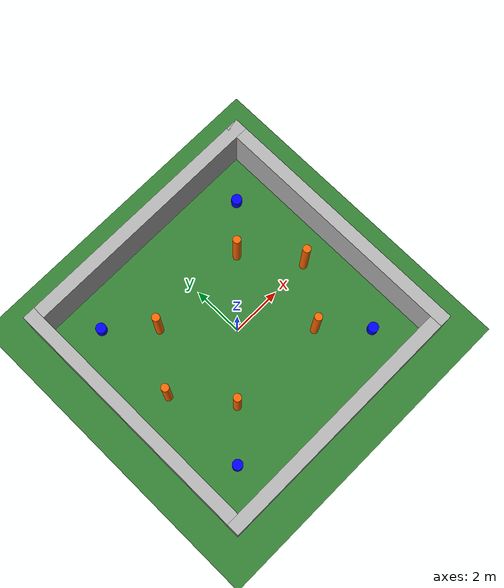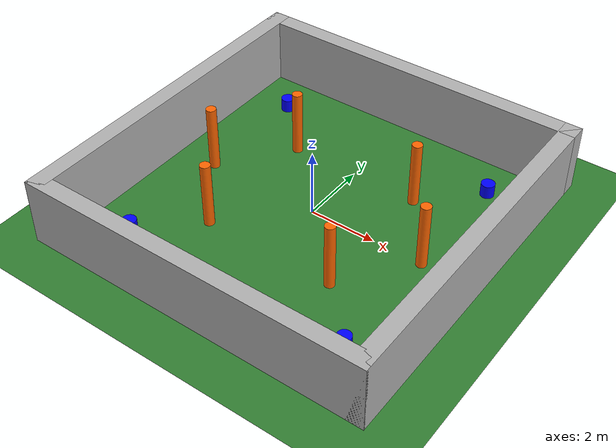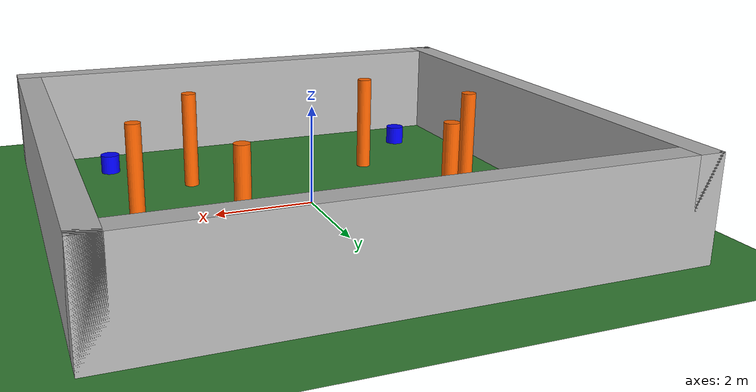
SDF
<?xml version="1.0" ?>
<sdf version="1.8">
    <world name="pioneer_world">
        <physics name="1ms" type="ignored">
            <max_step_size>0.001</max_step_size>
            <real_time_factor>1.0</real_time_factor>
        </physics>
        <plugin filename="libgz-sim-physics-system" name="gz::sim::systems::Physics"/>
        <plugin filename="libgz-sim-user-commands-system" name="gz::sim::systems::UserCommands"/>
        <plugin filename="libgz-sim-scene-broadcaster-system" name="gz::sim::systems::SceneBroadcaster"/>
        <plugin filename="libgz-sim-imu-system" name="gz::sim::systems::Imu"/>
        <plugin filename="libgz-sim-sensors-system.so" name="gz::sim::systems::Sensors"/>
        <plugin filename="libgz-sim-contact-system" name="gz::sim::systems::Contact"/>

        <light type="directional" name="sun">
            <cast_shadows>true</cast_shadows>
            <pose>0 0 10 0 0 0</pose>
            <diffuse>0.8 0.8 0.8 1</diffuse>
            <specular>0.2 0.2 0.2 1</specular>
            <attenuation>
                <range>1000</range>
                <constant>0.9</constant>
                <linear>0.01</linear>
                <quadratic>0.001</quadratic>
            </attenuation>
            <direction>-0.5 0.1 -0.9</direction>
        </light>

        <model name="ground_plane">
            <static>true</static>
            <link name="link">
                <collision name="collision">
                    <geometry><plane><normal>0 0 1</normal></plane></geometry>
                </collision>
                <visual name="visual">
                    <geometry>
                        <plane><normal>0 0 1</normal><size>100 100</size></plane>
                    </geometry>
                    <material>
                        <ambient>0.2 0.5 0.2 1</ambient>
                        <diffuse>0.2 0.5 0.2 1</diffuse>
                        <specular>0.1 0.3 0.1 1</specular>
                    </material>
                </visual>
            </link>
        </model>

        <!-- North wall -->
        <model name="wall_n">
            <static>true</static>
            <pose>0 5 1.0 0 0 0</pose>
            <link name="link">
                <visual name="visual">
                    <geometry><box><size>10.5 0.5 2.0</size></box></geometry>
                    <material><ambient>0.7 0.7 0.7 1</ambient><diffuse>0.7 0.7 0.7 1</diffuse></material>
                </visual>
                <collision name="collision">
                    <geometry><box><size>10.5 0.5 2.0</size></box></geometry>
                </collision>
            </link>
        </model>

        <!-- South wall -->
        <model name="wall_s">
            <static>true</static>
            <pose>0 -5 1.0 0 0 0</pose>
            <link name="link">
                <visual name="visual">
                    <geometry><box><size>10.5 0.5 2.0</size></box></geometry>
                    <material><ambient>0.7 0.7 0.7 1</ambient><diffuse>0.7 0.7 0.7 1</diffuse></material>
                </visual>
                <collision name="collision">
                    <geometry><box><size>10.5 0.5 2.0</size></box></geometry>
                </collision>
            </link>
        </model>

        <!-- East wall -->
        <model name="wall_e">
            <static>true</static>
            <pose>5 0 1.0 0 0 0</pose>
            <link name="link">
                <visual name="visual">
                    <geometry><box><size>0.5 10.5 2.0</size></box></geometry>
                    <material><ambient>0.7 0.7 0.7 1</ambient><diffuse>0.7 0.7 0.7 1</diffuse></material>
                </visual>
                <collision name="collision">
                    <geometry><box><size>0.5 10.5 2.0</size></box></geometry>
                </collision>
            </link>
        </model>

        <!-- West wall -->
        <model name="wall_w">
            <static>true</static>
            <pose>-5 0 1.0 0 0 0</pose>
            <link name="link">
                <visual name="visual">
                    <geometry><box><size>0.5 10.5 2.0</size></box></geometry>
                    <material><ambient>0.7 0.7 0.7 1</ambient><diffuse>0.7 0.7 0.7 1</diffuse></material>
                </visual>
                <collision name="collision">
                    <geometry><box><size>0.5 10.5 2.0</size></box></geometry>
                </collision>
            </link>
        </model>

        <!-- Orange Cones -->
        <model name="cone1">
            <static>true</static>
            <pose>2 2 1.0 0 0 0</pose>
            <link name="link">
                <visual name="visual">
                    <geometry><cylinder><radius>0.15</radius><length>2.0</length></cylinder></geometry>
                    <material><ambient>1.0 0.4 0.0 1</ambient><diffuse>1.0 0.4 0.0 1</diffuse></material>
                </visual>
                <collision name="collision">
                    <geometry><cylinder><radius>0.15</radius><length>2.0</length></cylinder></geometry>
                </collision>
            </link>
        </model>

        <model name="cone2">
            <static>true</static>
            <pose>-2 2 1.0 0 0 0</pose>
            <link name="link">
                <visual name="visual">
                    <geometry><cylinder><radius>0.15</radius><length>2.0</length></cylinder></geometry>
                    <material><ambient>1.0 0.4 0.0 1</ambient><diffuse>1.0 0.4 0.0 1</diffuse></material>
                </visual>
                <collision name="collision">
                    <geometry><cylinder><radius>0.15</radius><length>2.0</length></cylinder></geometry>
                </collision>
            </link>
        </model>

        <model name="cone3">
            <static>true</static>
            <pose>2 -2 1.0 0 0 0</pose>
            <link name="link">
                <visual name="visual">
                    <geometry><cylinder><radius>0.15</radius><length>2.0</length></cylinder></geometry>
                    <material><ambient>1.0 0.4 0.0 1</ambient><diffuse>1.0 0.4 0.0 1</diffuse></material>
                </visual>
                <collision name="collision">
                    <geometry><cylinder><radius>0.15</radius><length>2.0</length></cylinder></geometry>
                </collision>
            </link>
        </model>

        <model name="cone4">
            <static>true</static>
            <pose>-2 -2 1.0 0 0 0</pose>
            <link name="link">
                <visual name="visual">
                    <geometry><cylinder><radius>0.15</radius><length>2.0</length></cylinder></geometry>
                    <material><ambient>1.0 0.4 0.0 1</ambient><diffuse>1.0 0.4 0.0 1</diffuse></material>
                </visual>
                <collision name="collision">
                    <geometry><cylinder><radius>0.15</radius><length>2.0</length></cylinder></geometry>
                </collision>
            </link>
        </model>

        <model name="cone5">
            <static>true</static>
            <pose>3.5 0 1.0 0 0 0</pose>
            <link name="link">
                <visual name="visual">
                    <geometry><cylinder><radius>0.15</radius><length>2.0</length></cylinder></geometry>
                    <material><ambient>1.0 0.4 0.0 1</ambient><diffuse>1.0 0.4 0.0 1</diffuse></material>
                </visual>
                <collision name="collision">
                    <geometry><cylinder><radius>0.15</radius><length>2.0</length></cylinder></geometry>
                </collision>
            </link>
        </model>

        <model name="cone6">
            <static>true</static>
            <pose>-3.5 0 1.0 0 0 0</pose>
            <link name="link">
                <visual name="visual">
                    <geometry><cylinder><radius>0.15</radius><length>2.0</length></cylinder></geometry>
                    <material><ambient>1.0 0.4 0.0 1</ambient><diffuse>1.0 0.4 0.0 1</diffuse></material>
                </visual>
                <collision name="collision">
                    <geometry><cylinder><radius>0.15</radius><length>2.0</length></cylinder></geometry>
                </collision>
            </link>
        </model>

        <!-- Blue Buckets -->
        <model name="bucket1">
            <static>true</static>
            <pose>3.5 3.5 0.2 0 0 0</pose>
            <link name="link">
                <visual name="visual">
                    <geometry><cylinder><radius>0.2</radius><length>0.4</length></cylinder></geometry>
                    <material><ambient>0.0 0.0 1.0 1</ambient><diffuse>0.0 0.0 1.0 1</diffuse></material>
                </visual>
                <collision name="collision">
                    <geometry><cylinder><radius>0.2</radius><length>0.4</length></cylinder></geometry>
                </collision>
            </link>
        </model>

        <model name="bucket2">
            <static>true</static>
            <pose>-3.5 3.5 0.2 0 0 0</pose>
            <link name="link">
                <visual name="visual">
                    <geometry><cylinder><radius>0.2</radius><length>0.4</length></cylinder></geometry>
                    <material><ambient>0.0 0.0 1.0 1</ambient><diffuse>0.0 0.0 1.0 1</diffuse></material>
                </visual>
                <collision name="collision">
                    <geometry><cylinder><radius>0.2</radius><length>0.4</length></cylinder></geometry>
                </collision>
            </link>
        </model>

        <model name="bucket3">
            <static>true</static>
            <pose>3.5 -3.5 0.2 0 0 0</pose>
            <link name="link">
                <visual name="visual">
                    <geometry><cylinder><radius>0.2</radius><length>0.4</length></cylinder></geometry>
                    <material><ambient>0.0 0.0 1.0 1</ambient><diffuse>0.0 0.0 1.0 1</diffuse></material>
                </visual>
                <collision name="collision">
                    <geometry><cylinder><radius>0.2</radius><length>0.4</length></cylinder></geometry>
                </collision>
            </link>
        </model>

        <model name="bucket4">
            <static>true</static>
            <pose>-3.5 -3.5 0.2 0 0 0</pose>
            <link name="link">
                <visual name="visual">
                    <geometry><cylinder><radius>0.2</radius><length>0.4</length></cylinder></geometry>
                    <material><ambient>0.0 0.0 1.0 1</ambient><diffuse>0.0 0.0 1.0 1</diffuse></material>
                </visual>
                <collision name="collision">
                    <geometry><cylinder><radius>0.2</radius><length>0.4</length></cylinder></geometry>
                </collision>
            </link>
        </model>

    </world>
</sdf>
